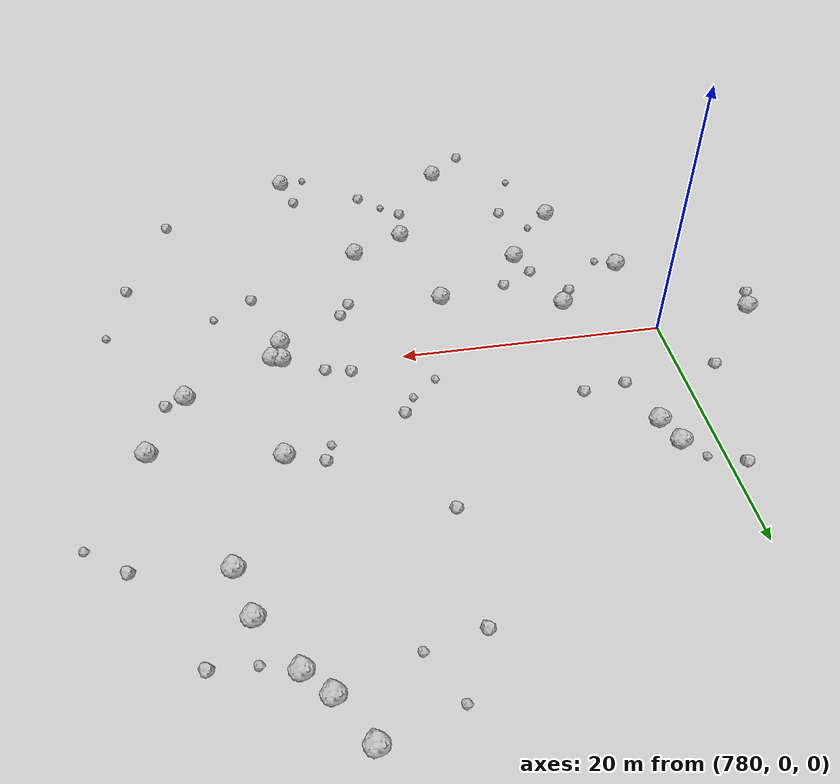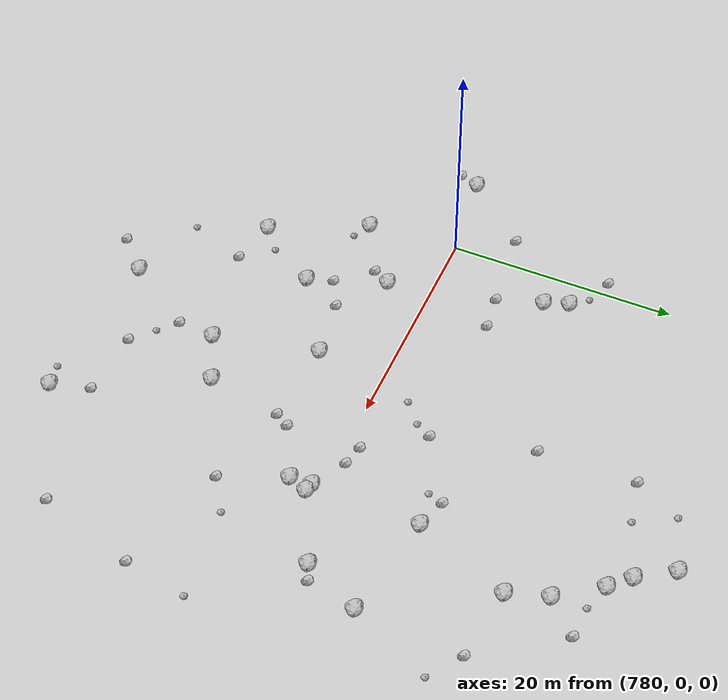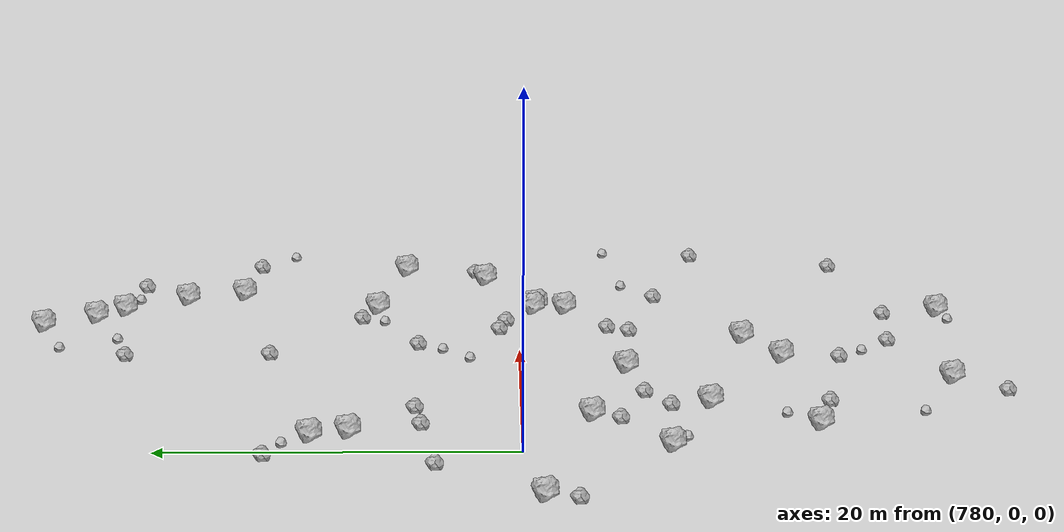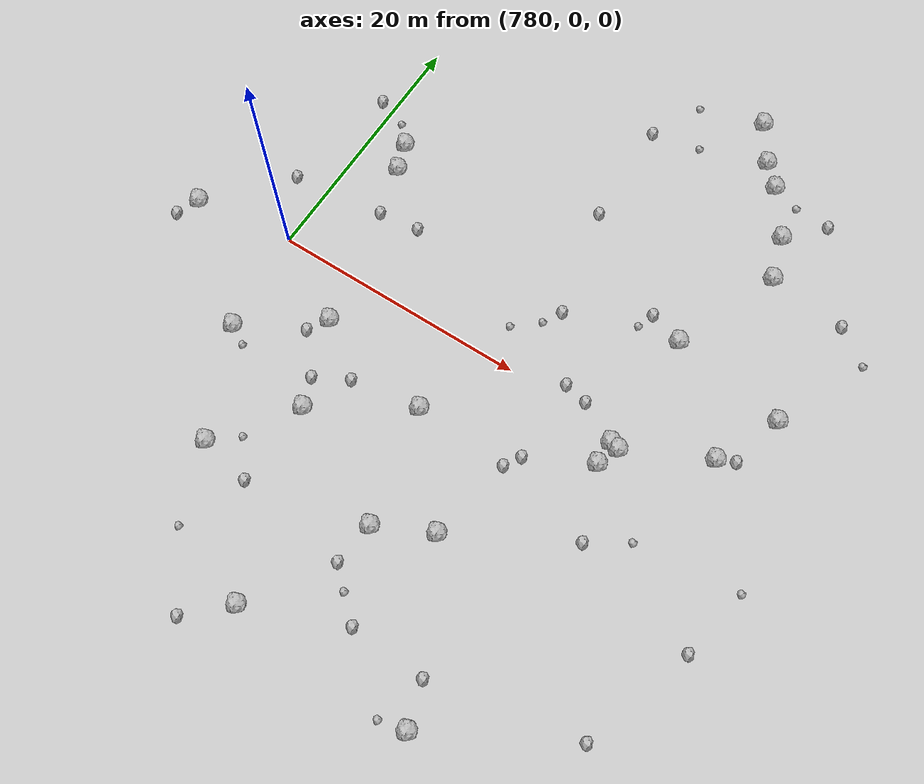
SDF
<sdf version="1.6">
 <world name="default">
  <include><uri>model://sun</uri></include>
  <model name="rock1_20_4">
   <include><uri>model://rock1</uri><pose>809.7163879218881 -1.0713867224644993 0.5 0 0 0</pose></include>
  </model>
  <model name="rock1_20_5">
   <include><uri>model://rock1</uri><pose>808.3294877379069 -25.3878322025961 0.5 0 0 0</pose></include>
  </model>
  <model name="rock1_20_6">
   <include><uri>model://rock1</uri><pose>805.2418456596102 28.50518993972755 0.5 0 0 0</pose></include>
  </model>
  <model name="rock1_20_7">
   <include><uri>model://rock1</uri><pose>808.7671383633489 23.90057386366695 0.5 0 0 0</pose></include>
  </model>
  <model name="rock1_20_8">
   <include><uri>model://rock1</uri><pose>772.2283021158315 -1.0365421267678379 0.5 0 0 0</pose></include>
  </model>
  <model name="rock1_20_9">
   <include><uri>model://rock1</uri><pose>780.8562192841424 -8.081711229563432 0.5 0 0 0</pose></include>
  </model>
  <model name="rock1_20_10">
   <include><uri>model://rock1</uri><pose>786.5875337234833 -3.871071513588099 0.5 0 0 0</pose></include>
  </model>
  <model name="rock1_20_11">
   <include><uri>model://rock1</uri><pose>793.8435105764772 -24.688847758228782 0.5 0 0 0</pose></include>
  </model>
  <model name="rock1_20_12">
   <include><uri>model://rock1</uri><pose>807.1809501980928 25.5283033455095 0.5 0 0 0</pose></include>
  </model>
  <model name="rock1_20_13">
   <include><uri>model://rock1</uri><pose>784.7716121255821 -16.404632363865776 0.5 0 0 0</pose></include>
  </model>
  <model name="rock1_20_14">
   <include><uri>model://rock1</uri><pose>802.4324828199649 -13.173168184567203 0.5 0 0 0</pose></include>
  </model>
  <model name="rock1_20_15">
   <include><uri>model://rock1</uri><pose>812.4171618932463 16.865266171795028 0.5 0 0 0</pose></include>
  </model>
  <model name="rock1_20_16">
   <include><uri>model://rock1</uri><pose>796.1255040442959 -6.092179731517579 0.5 0 0 0</pose></include>
  </model>
  <model name="rock1_20_17">
   <include><uri>model://rock1</uri><pose>789.046664440065 -10.574504822933484 0.5 0 0 0</pose></include>
  </model>
  <model name="rock1_20_18">
   <include><uri>model://rock1</uri><pose>809.0229119558921 -0.8794322030462887 0.5 0 0 0</pose></include>
  </model>
  <model name="rock1_20_19">
   <include><uri>model://rock1</uri><pose>811.3103911083807 20.282336524881863 0.5 0 0 0</pose></include>
  </model>
  <model name="rock1_20_20">
   <include><uri>model://rock1</uri><pose>818.2148336791925 6.955604544353051 0.5 0 0 0</pose></include>
  </model>
  <model name="rock1_20_21">
   <include><uri>model://rock1</uri><pose>782.66917016722 11.659138328595098 0.5 0 0 0</pose></include>
  </model>
  <model name="rock1_20_22">
   <include><uri>model://rock1</uri><pose>783.414603404624 9.557663639160879 0.5 0 0 0</pose></include>
  </model>
  <model name="rock1_20_23">
   <include><uri>model://rock1</uri><pose>815.9367028534649 2.0190286563144824 0.5 0 0 0</pose></include>
  </model>
  <model name="rock1_20_24">
   <include><uri>model://rock1</uri><pose>809.0723378156208 -2.783235052387827 0.5 0 0 0</pose></include>
  </model>
  <model name="rock1_20_25">
   <include><uri>model://rock1</uri><pose>798.212935493509 -15.227099205707198 0.5 0 0 0</pose></include>
  </model>
  <model name="rock1_20_26">
   <include><uri>model://rock1</uri><pose>809.1246799133778 8.568330238097865 0.5 0 0 0</pose></include>
  </model>
  <model name="rock2_20_0">
   <include><uri>model://rock2</uri><pose>801.295746863537 -21.69261008455787 0.3 0 0 0</pose></include>
  </model>
  <model name="rock2_20_1">
   <include><uri>model://rock2</uri><pose>803.5551544910912 -6.510512682564784 0.3 0 0 0</pose></include>
  </model>
  <model name="rock2_20_2">
   <include><uri>model://rock2</uri><pose>778.8982899070799 14.020969371766142 0.3 0 0 0</pose></include>
  </model>
  <model name="rock2_20_3">
   <include><uri>model://rock2</uri><pose>805.8889273695593 0.7677191108576018 0.3 0 0 0</pose></include>
  </model>
  <model name="rock2_20_4">
   <include><uri>model://rock2</uri><pose>785.6412973297502 -5.432379151262346 0.3 0 0 0</pose></include>
  </model>
  <model name="rock2_20_5">
   <include><uri>model://rock2</uri><pose>821.2356892826184 -11.036723322319865 0.3 0 0 0</pose></include>
  </model>
  <model name="rock2_20_6">
   <include><uri>model://rock2</uri><pose>807.2569268201576 -22.006078331648816 0.3 0 0 0</pose></include>
  </model>
  <model name="rock2_20_7">
   <include><uri>model://rock2</uri><pose>811.220886612585 -8.283207563788597 0.3 0 0 0</pose></include>
  </model>
  <model name="rock2_20_8">
   <include><uri>model://rock2</uri><pose>798.5984356347701 14.614995395046392 0.3 0 0 0</pose></include>
  </model>
  <model name="rock2_20_9">
   <include><uri>model://rock2</uri><pose>813.8332618221249 23.006248871880253 0.3 0 0 0</pose></include>
  </model>
  <model name="rock2_20_10">
   <include><uri>model://rock2</uri><pose>784.5340624625103 5.602676123930458 0.3 0 0 0</pose></include>
  </model>
  <model name="rock2_20_11">
   <include><uri>model://rock2</uri><pose>817.259956506189 2.649624601875395 0.3 0 0 0</pose></include>
  </model>
  <model name="rock2_20_12">
   <include><uri>model://rock2</uri><pose>804.2959901666544 -5.241267374254679 0.3 0 0 0</pose></include>
  </model>
  <model name="rock2_20_13">
   <include><uri>model://rock2</uri><pose>797.8463801375859 -18.55840121931019 0.3 0 0 0</pose></include>
  </model>
  <model name="rock2_20_14">
   <include><uri>model://rock2</uri><pose>798.3540680139249 23.051164058536273 0.3 0 0 0</pose></include>
  </model>
  <model name="rock2_20_15">
   <include><uri>model://rock2</uri><pose>788.8778149496457 -17.262779952831245 0.3 0 0 0</pose></include>
  </model>
  <model name="rock2_20_16">
   <include><uri>model://rock2</uri><pose>790.7219915226603 -6.936313430903894 0.3 0 0 0</pose></include>
  </model>
  <model name="rock2_20_17">
   <include><uri>model://rock2</uri><pose>771.4782155704656 -2.8129021763071442 0.3 0 0 0</pose></include>
  </model>
  <model name="rock2_20_18">
   <include><uri>model://rock2</uri><pose>800.668401468319 5.972526759944579 0.3 0 0 0</pose></include>
  </model>
  <model name="rock2_20_19">
   <include><uri>model://rock2</uri><pose>804.0023722666349 1.1897154772144987 0.3 0 0 0</pose></include>
  </model>
  <model name="rock2_20_20">
   <include><uri>model://rock2</uri><pose>806.4261650765665 9.42218694208458 0.3 0 0 0</pose></include>
  </model>
  <model name="rock2_20_21">
   <include><uri>model://rock2</uri><pose>777.3054738006509 4.758394619084065 0.3 0 0 0</pose></include>
  </model>
  <model name="rock2_20_22">
   <include><uri>model://rock2</uri><pose>788.171935911434 -8.327319166717302 0.3 0 0 0</pose></include>
  </model>
  <model name="rock2_20_23">
   <include><uri>model://rock2</uri><pose>818.5875133912912 -19.684693522058506 0.3 0 0 0</pose></include>
  </model>
  <model name="rock2_20_24">
   <include><uri>model://rock2</uri><pose>787.7238766641144 5.977352623090503 0.3 0 0 0</pose></include>
  </model>
  <model name="rock2_20_25">
   <include><uri>model://rock2</uri><pose>818.586720004764 16.112122077876364 0.3 0 0 0</pose></include>
  </model>
  <model name="rock2_20_26">
   <include><uri>model://rock2</uri><pose>790.922365991224 -27.499608465652074 0.3 0 0 0</pose></include>
  </model>
  <model name="rock3_20_0">
   <include><uri>model://rock3</uri><pose>781.2906584259597 13.085739323186154 0.2 0 0 0</pose></include>
  </model>
  <model name="rock3_20_1">
   <include><uri>model://rock3</uri><pose>787.0294732931351 -22.43938830113765 0.2 0 0 0</pose></include>
  </model>
  <model name="rock3_20_2">
   <include><uri>model://rock3</uri><pose>798.0109835975371 2.9049721371481354 0.2 0 0 0</pose></include>
  </model>
  <model name="rock3_20_3">
   <include><uri>model://rock3</uri><pose>806.246494133518 -25.862373800860734 0.2 0 0 0</pose></include>
  </model>
  <model name="rock3_20_4">
   <include><uri>model://rock3</uri><pose>822.2069284172535 -5.529793163766708 0.2 0 0 0</pose></include>
  </model>
  <model name="rock3_20_5">
   <include><uri>model://rock3</uri><pose>821.3574879403652 14.072642488528196 0.2 0 0 0</pose></include>
  </model>
  <model name="rock3_20_6">
   <include><uri>model://rock3</uri><pose>802.1245886026097 23.78895834165155 0.2 0 0 0</pose></include>
  </model>
  <model name="rock3_20_7">
   <include><uri>model://rock3</uri><pose>814.1294961225948 -6.417119707180188 0.2 0 0 0</pose></include>
  </model>
  <model name="rock3_20_8">
   <include><uri>model://rock3</uri><pose>786.7563980449985 -14.725176804340965 0.2 0 0 0</pose></include>
  </model>
  <model name="rock3_20_9">
   <include><uri>model://rock3</uri><pose>811.0090391907739 23.135984169519233 0.2 0 0 0</pose></include>
  </model>
  <model name="rock3_20_10">
   <include><uri>model://rock3</uri><pose>799.3869700222574 -20.040879969009346 0.2 0 0 0</pose></include>
  </model>
  <model name="rock3_20_11">
   <include><uri>model://rock3</uri><pose>805.9558337082896 8.037070792032097 0.2 0 0 0</pose></include>
  </model>
  <model name="rock3_20_12">
   <include><uri>model://rock3</uri><pose>800.307512603508 27.050088261034148 0.2 0 0 0</pose></include>
  </model>
  <model name="rock3_20_13">
   <include><uri>model://rock3</uri><pose>799.858835220056 4.49450755665714 0.2 0 0 0</pose></include>
  </model>
  <model name="rock3_20_14">
   <include><uri>model://rock3</uri><pose>782.347415779286 -8.96801143550871 0.2 0 0 0</pose></include>
  </model>
 </world>
</sdf>
